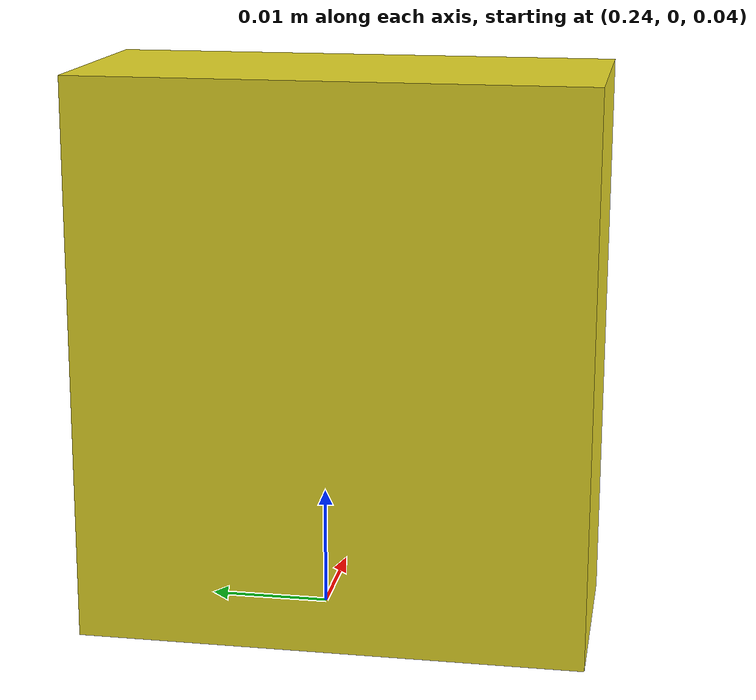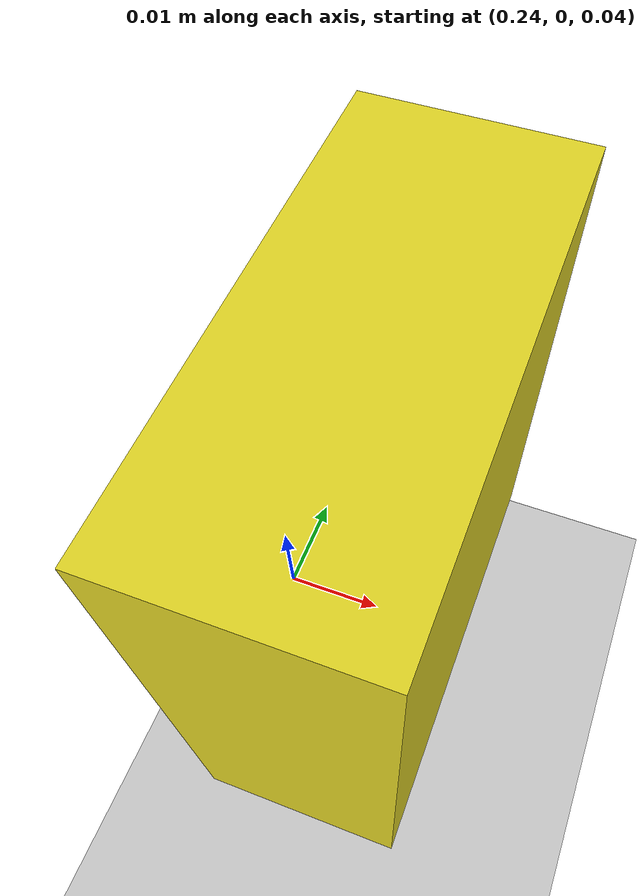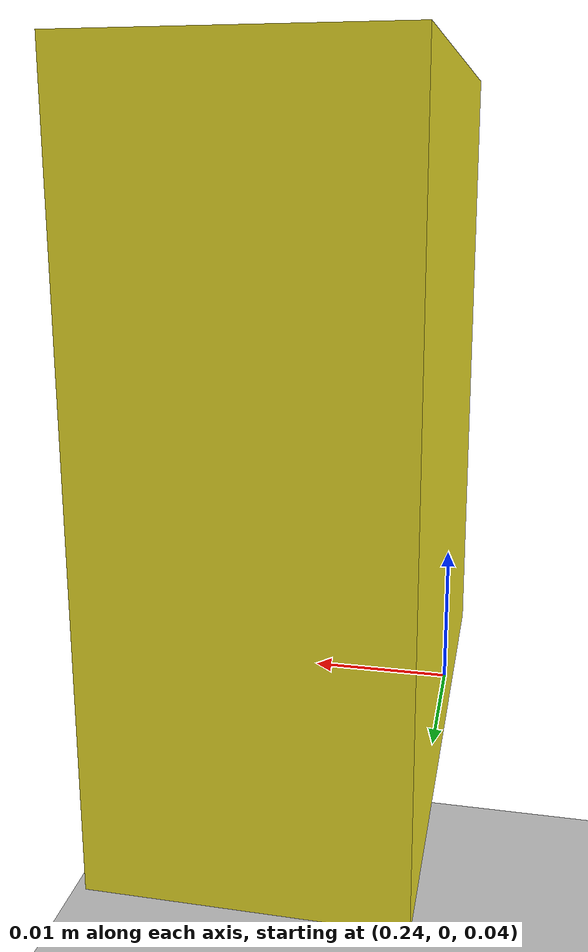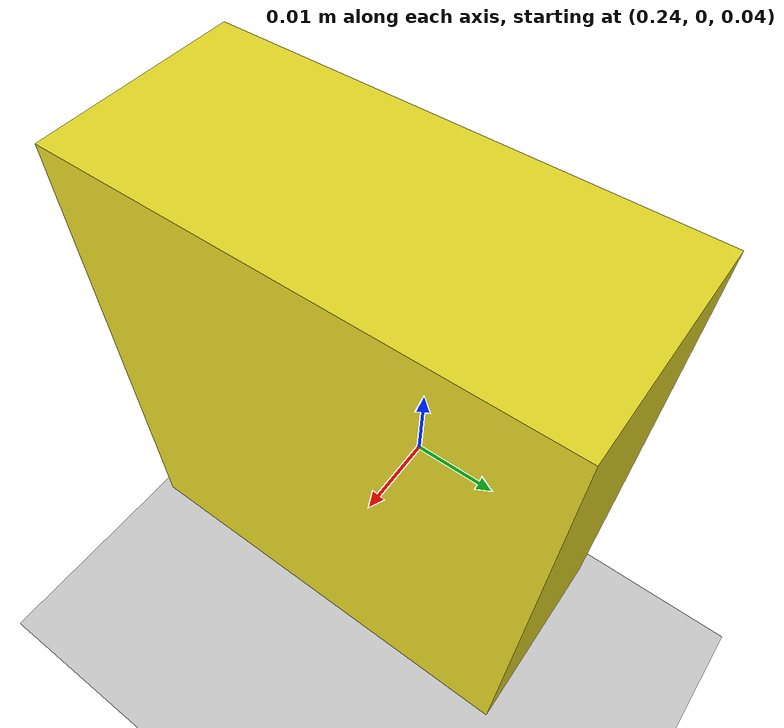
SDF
<?xml version="1.0" ?>
<sdf version="1.4">
  <world name="empty">

    <!-- Global world -->
    <include>
      <uri>model://ground_plane</uri>
    </include>

    <!-- Global light source -->
    <include>
      <uri>model://sun</uri>
    </include>

    <!-- Physics settings for simulation -->
  <physics type="ode">
      <gravity>0.000000 0.000000 -9.810000</gravity>
      <ode>
        <solver>
          <type>quick</type>
          <iters>100</iters>
          <precon_iters>0</precon_iters>
          <sor>1.000000</sor>
        </solver>
        <constraints>
          <cfm>0.000000</cfm>
          <erp>0.500000</erp>
          <contact_max_correcting_vel>1000.000000</contact_max_correcting_vel>
          <contact_surface_layer>0.00000</contact_surface_layer>
        </constraints>
      </ode>
  </physics>

 <model name='table_box_model'>
      <pose frame=''>0.25 0.0 0.06 0 0 0</pose>
      <link name='table_box_link'>

        <inertial>
          <mass>0.001</mass>
          <inertia>
            <ixx>0.0001</ixx>
            <ixy>0</ixy>
            <ixz>0</ixz>
            <iyy>0.0001</iyy>
            <iyz>0</iyz>
            <izz>0.0001</izz>
          </inertia>
        </inertial>

        <collision name='collision'>
          <geometry>
            <box>
              <size>0.02 0.045 0.05</size>
            </box>
          </geometry>
          <max_contacts>10</max_contacts>
          <surface>
                   <contact>
                     <ode>
                       <kp>10000000.0</kp>
                       <kd>1.0</kd>
                       <min_depth>0.001</min_depth>
                       <max_vel>0.1</max_vel>
                     </ode>
                   </contact>
            <bounce/>
            <friction>
              <ode>
                <mu>1000</mu>
                <mu2>1000</mu2>
              </ode>
              <torsional>
                <ode/>
              </torsional>
            </friction>
          </surface>
        </collision>

        <visual name='visual'>
          <geometry>
            <box>
              <size>0.02 0.045 0.05</size>
            </box>
          </geometry>
          <material>
            <script>
              <name>Gazebo/Yellow</name>
              <uri>file://media/materials/scripts/gazebo.material</uri>
            </script>
          </material>
        </visual>
        <self_collide>0</self_collide>
        <kinematic>0</kinematic>
      </link>
    </model>

    <!-- Focus camera on tall pendulum -->
    <gui fullscreen='0'>
      <camera name='user_camera'>
        <pose> 2.0 -2.0 1.2 0.0 0.275643 2.356190 </pose>
        <view_controller>orbit</view_controller>
      </camera>
    </gui>
  </world>
</sdf>
